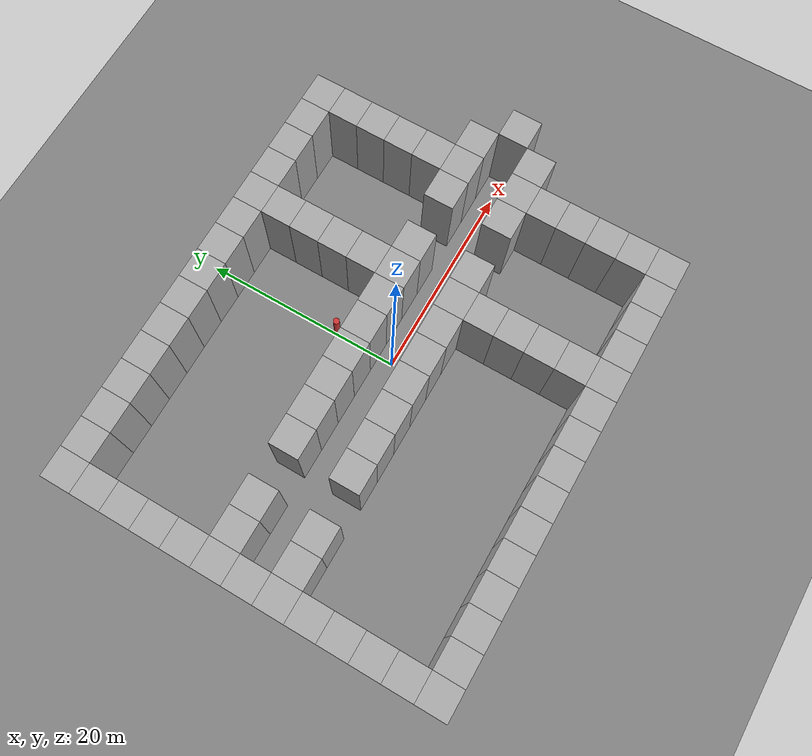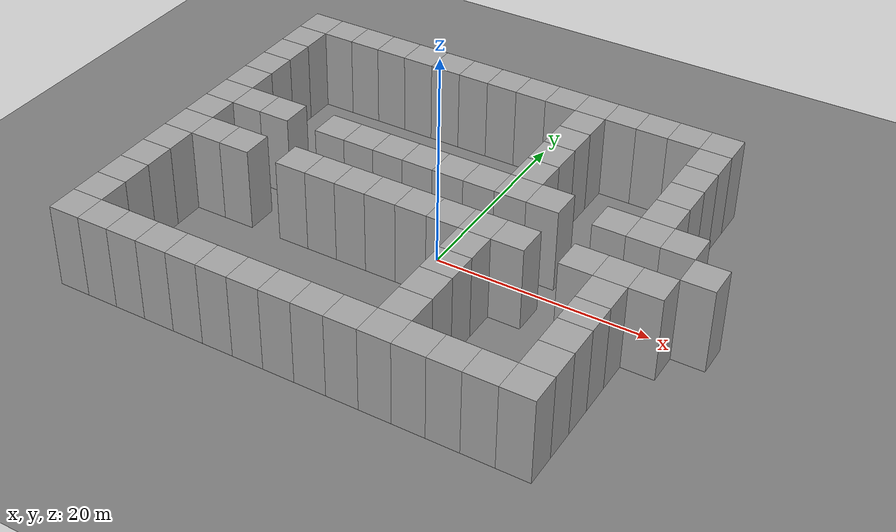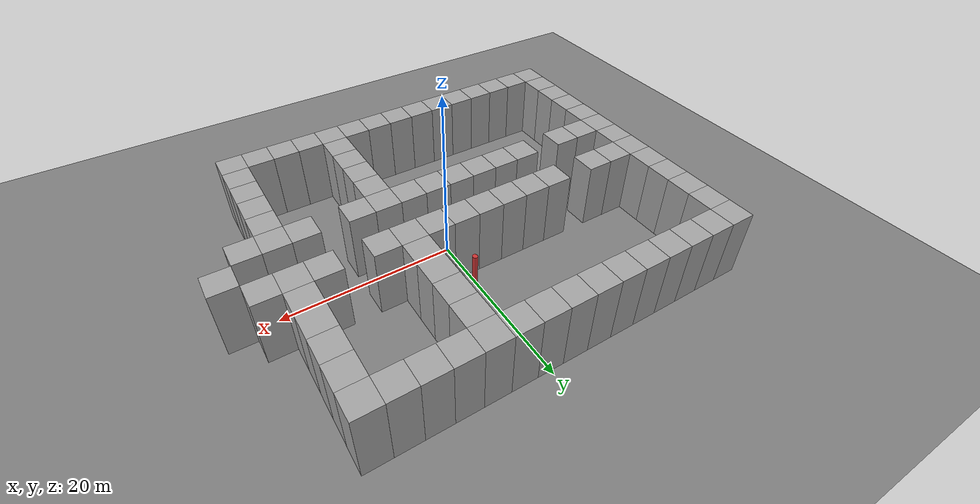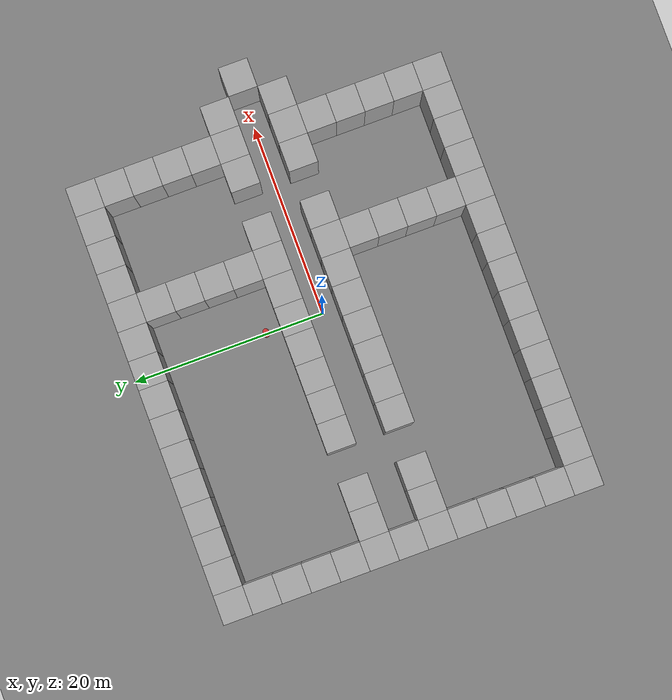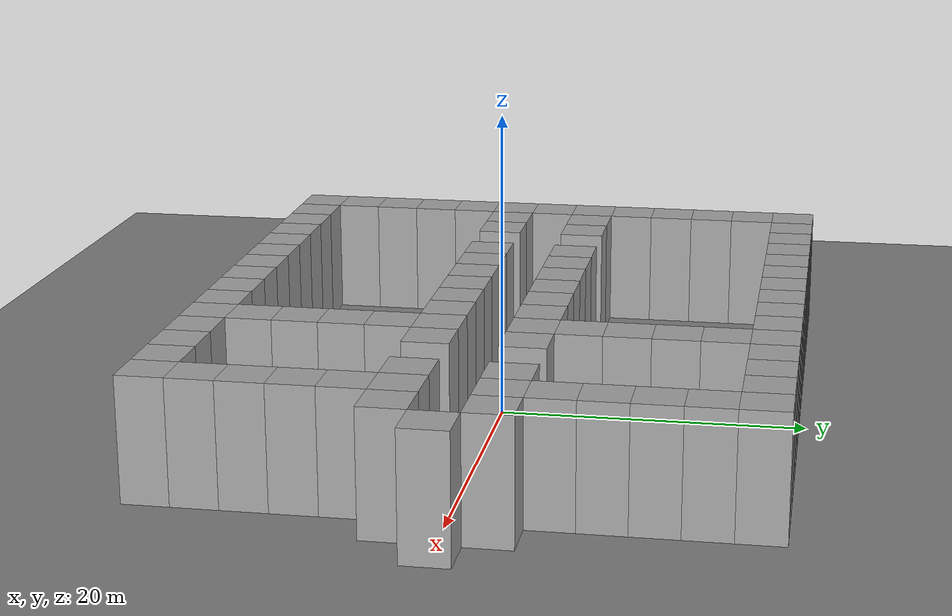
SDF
<?xml version="1.0" ?>
<sdf version="1.9">
  <world name="maze">

    <plugin filename="gz-sim-physics-system"
            name="gz::sim::systems::Physics"/>
    <plugin filename="gz-sim-sensors-system"
            name="gz::sim::systems::Sensors">
      <render_engine>ogre2</render_engine>
    </plugin>
    <plugin filename="gz-sim-imu-system"
            name="gz::sim::systems::Imu"/>
    <plugin filename="gz-sim-navsat-system"
            name="gz::sim::systems::NavSat"/>
    <plugin filename="gz-sim-contact-system"
            name="gz::sim::systems::Contact"/>
    <plugin filename="gz-sim-scene-broadcaster-system"
            name="gz::sim::systems::SceneBroadcaster"/>
    <plugin filename="gz-sim-user-commands-system"
            name="gz::sim::systems::UserCommands"/>

    <light name="sun" type="directional">
      <cast_shadows>true</cast_shadows>
      <pose>0 0 10 0 0 0</pose>
      <diffuse>1 1 1 1</diffuse>
      <specular>0.5 0.5 0.5 1</specular>
      <attenuation>
        <range>1000</range>
        <constant>0.9</constant>
        <linear>0.01</linear>
        <quadratic>0.001</quadratic>
      </attenuation>
      <direction>-0.5 0.1 -0.9</direction>
    </light>

    <model name="ground_plane">
      <static>true</static>
      <link name="link">
        <collision name="collision">
          <geometry>
            <plane><normal>0 0 1</normal><size>200 200</size></plane>
          </geometry>
        </collision>
        <visual name="visual">
          <geometry>
            <plane><normal>0 0 1</normal><size>200 200</size></plane>
          </geometry>
          <material>
            <ambient>0.3 0.3 0.3 1</ambient>
            <diffuse>0.5 0.5 0.5 1</diffuse>
          </material>
        </visual>
      </link>
    </model>

    <model name="wall_0">
      <static>true</static>
      <pose>-24.000 18.000 4.000 0 0 0</pose>
      <link name="link">
        <collision name="collision">
          <geometry>
            <box><size>3.000 3.000 8.000</size></box>
          </geometry>
        </collision>
        <visual name="visual">
          <geometry>
            <box><size>3.000 3.000 8.000</size></box>
          </geometry>
          <material>
            <ambient>0.45 0.45 0.45 1</ambient>
            <diffuse>0.65 0.65 0.65 1</diffuse>
          </material>
        </visual>
      </link>
    </model>
    <model name="wall_1">
      <static>true</static>
      <pose>-21.000 18.000 4.000 0 0 0</pose>
      <link name="link">
        <collision name="collision">
          <geometry>
            <box><size>3.000 3.000 8.000</size></box>
          </geometry>
        </collision>
        <visual name="visual">
          <geometry>
            <box><size>3.000 3.000 8.000</size></box>
          </geometry>
          <material>
            <ambient>0.45 0.45 0.45 1</ambient>
            <diffuse>0.65 0.65 0.65 1</diffuse>
          </material>
        </visual>
      </link>
    </model>
    <model name="wall_2">
      <static>true</static>
      <pose>-18.000 18.000 4.000 0 0 0</pose>
      <link name="link">
        <collision name="collision">
          <geometry>
            <box><size>3.000 3.000 8.000</size></box>
          </geometry>
        </collision>
        <visual name="visual">
          <geometry>
            <box><size>3.000 3.000 8.000</size></box>
          </geometry>
          <material>
            <ambient>0.45 0.45 0.45 1</ambient>
            <diffuse>0.65 0.65 0.65 1</diffuse>
          </material>
        </visual>
      </link>
    </model>
    <model name="wall_3">
      <static>true</static>
      <pose>-15.000 18.000 4.000 0 0 0</pose>
      <link name="link">
        <collision name="collision">
          <geometry>
            <box><size>3.000 3.000 8.000</size></box>
          </geometry>
        </collision>
        <visual name="visual">
          <geometry>
            <box><size>3.000 3.000 8.000</size></box>
          </geometry>
          <material>
            <ambient>0.45 0.45 0.45 1</ambient>
            <diffuse>0.65 0.65 0.65 1</diffuse>
          </material>
        </visual>
      </link>
    </model>
    <model name="wall_4">
      <static>true</static>
      <pose>-12.000 18.000 4.000 0 0 0</pose>
      <link name="link">
        <collision name="collision">
          <geometry>
            <box><size>3.000 3.000 8.000</size></box>
          </geometry>
        </collision>
        <visual name="visual">
          <geometry>
            <box><size>3.000 3.000 8.000</size></box>
          </geometry>
          <material>
            <ambient>0.45 0.45 0.45 1</ambient>
            <diffuse>0.65 0.65 0.65 1</diffuse>
          </material>
        </visual>
      </link>
    </model>
    <model name="wall_5">
      <static>true</static>
      <pose>-9.000 18.000 4.000 0 0 0</pose>
      <link name="link">
        <collision name="collision">
          <geometry>
            <box><size>3.000 3.000 8.000</size></box>
          </geometry>
        </collision>
        <visual name="visual">
          <geometry>
            <box><size>3.000 3.000 8.000</size></box>
          </geometry>
          <material>
            <ambient>0.45 0.45 0.45 1</ambient>
            <diffuse>0.65 0.65 0.65 1</diffuse>
          </material>
        </visual>
      </link>
    </model>
    <model name="wall_6">
      <static>true</static>
      <pose>-6.000 18.000 4.000 0 0 0</pose>
      <link name="link">
        <collision name="collision">
          <geometry>
            <box><size>3.000 3.000 8.000</size></box>
          </geometry>
        </collision>
        <visual name="visual">
          <geometry>
            <box><size>3.000 3.000 8.000</size></box>
          </geometry>
          <material>
            <ambient>0.45 0.45 0.45 1</ambient>
            <diffuse>0.65 0.65 0.65 1</diffuse>
          </material>
        </visual>
      </link>
    </model>
    <model name="wall_7">
      <static>true</static>
      <pose>-3.000 18.000 4.000 0 0 0</pose>
      <link name="link">
        <collision name="collision">
          <geometry>
            <box><size>3.000 3.000 8.000</size></box>
          </geometry>
        </collision>
        <visual name="visual">
          <geometry>
            <box><size>3.000 3.000 8.000</size></box>
          </geometry>
          <material>
            <ambient>0.45 0.45 0.45 1</ambient>
            <diffuse>0.65 0.65 0.65 1</diffuse>
          </material>
        </visual>
      </link>
    </model>
    <model name="wall_8">
      <static>true</static>
      <pose>0.000 18.000 4.000 0 0 0</pose>
      <link name="link">
        <collision name="collision">
          <geometry>
            <box><size>3.000 3.000 8.000</size></box>
          </geometry>
        </collision>
        <visual name="visual">
          <geometry>
            <box><size>3.000 3.000 8.000</size></box>
          </geometry>
          <material>
            <ambient>0.45 0.45 0.45 1</ambient>
            <diffuse>0.65 0.65 0.65 1</diffuse>
          </material>
        </visual>
      </link>
    </model>
    <model name="wall_9">
      <static>true</static>
      <pose>3.000 18.000 4.000 0 0 0</pose>
      <link name="link">
        <collision name="collision">
          <geometry>
            <box><size>3.000 3.000 8.000</size></box>
          </geometry>
        </collision>
        <visual name="visual">
          <geometry>
            <box><size>3.000 3.000 8.000</size></box>
          </geometry>
          <material>
            <ambient>0.45 0.45 0.45 1</ambient>
            <diffuse>0.65 0.65 0.65 1</diffuse>
          </material>
        </visual>
      </link>
    </model>
    <model name="wall_10">
      <static>true</static>
      <pose>6.000 18.000 4.000 0 0 0</pose>
      <link name="link">
        <collision name="collision">
          <geometry>
            <box><size>3.000 3.000 8.000</size></box>
          </geometry>
        </collision>
        <visual name="visual">
          <geometry>
            <box><size>3.000 3.000 8.000</size></box>
          </geometry>
          <material>
            <ambient>0.45 0.45 0.45 1</ambient>
            <diffuse>0.65 0.65 0.65 1</diffuse>
          </material>
        </visual>
      </link>
    </model>
    <model name="wall_11">
      <static>true</static>
      <pose>9.000 18.000 4.000 0 0 0</pose>
      <link name="link">
        <collision name="collision">
          <geometry>
            <box><size>3.000 3.000 8.000</size></box>
          </geometry>
        </collision>
        <visual name="visual">
          <geometry>
            <box><size>3.000 3.000 8.000</size></box>
          </geometry>
          <material>
            <ambient>0.45 0.45 0.45 1</ambient>
            <diffuse>0.65 0.65 0.65 1</diffuse>
          </material>
        </visual>
      </link>
    </model>
    <model name="wall_12">
      <static>true</static>
      <pose>12.000 18.000 4.000 0 0 0</pose>
      <link name="link">
        <collision name="collision">
          <geometry>
            <box><size>3.000 3.000 8.000</size></box>
          </geometry>
        </collision>
        <visual name="visual">
          <geometry>
            <box><size>3.000 3.000 8.000</size></box>
          </geometry>
          <material>
            <ambient>0.45 0.45 0.45 1</ambient>
            <diffuse>0.65 0.65 0.65 1</diffuse>
          </material>
        </visual>
      </link>
    </model>
    <model name="wall_13">
      <static>true</static>
      <pose>15.000 18.000 4.000 0 0 0</pose>
      <link name="link">
        <collision name="collision">
          <geometry>
            <box><size>3.000 3.000 8.000</size></box>
          </geometry>
        </collision>
        <visual name="visual">
          <geometry>
            <box><size>3.000 3.000 8.000</size></box>
          </geometry>
          <material>
            <ambient>0.45 0.45 0.45 1</ambient>
            <diffuse>0.65 0.65 0.65 1</diffuse>
          </material>
        </visual>
      </link>
    </model>
    <model name="wall_14">
      <static>true</static>
      <pose>18.000 18.000 4.000 0 0 0</pose>
      <link name="link">
        <collision name="collision">
          <geometry>
            <box><size>3.000 3.000 8.000</size></box>
          </geometry>
        </collision>
        <visual name="visual">
          <geometry>
            <box><size>3.000 3.000 8.000</size></box>
          </geometry>
          <material>
            <ambient>0.45 0.45 0.45 1</ambient>
            <diffuse>0.65 0.65 0.65 1</diffuse>
          </material>
        </visual>
      </link>
    </model>
    <model name="wall_15">
      <static>true</static>
      <pose>-24.000 15.000 4.000 0 0 0</pose>
      <link name="link">
        <collision name="collision">
          <geometry>
            <box><size>3.000 3.000 8.000</size></box>
          </geometry>
        </collision>
        <visual name="visual">
          <geometry>
            <box><size>3.000 3.000 8.000</size></box>
          </geometry>
          <material>
            <ambient>0.45 0.45 0.45 1</ambient>
            <diffuse>0.65 0.65 0.65 1</diffuse>
          </material>
        </visual>
      </link>
    </model>
    <model name="wall_16">
      <static>true</static>
      <pose>6.000 15.000 4.000 0 0 0</pose>
      <link name="link">
        <collision name="collision">
          <geometry>
            <box><size>3.000 3.000 8.000</size></box>
          </geometry>
        </collision>
        <visual name="visual">
          <geometry>
            <box><size>3.000 3.000 8.000</size></box>
          </geometry>
          <material>
            <ambient>0.45 0.45 0.45 1</ambient>
            <diffuse>0.65 0.65 0.65 1</diffuse>
          </material>
        </visual>
      </link>
    </model>
    <model name="wall_17">
      <static>true</static>
      <pose>18.000 15.000 4.000 0 0 0</pose>
      <link name="link">
        <collision name="collision">
          <geometry>
            <box><size>3.000 3.000 8.000</size></box>
          </geometry>
        </collision>
        <visual name="visual">
          <geometry>
            <box><size>3.000 3.000 8.000</size></box>
          </geometry>
          <material>
            <ambient>0.45 0.45 0.45 1</ambient>
            <diffuse>0.65 0.65 0.65 1</diffuse>
          </material>
        </visual>
      </link>
    </model>
    <model name="wall_18">
      <static>true</static>
      <pose>-24.000 12.000 4.000 0 0 0</pose>
      <link name="link">
        <collision name="collision">
          <geometry>
            <box><size>3.000 3.000 8.000</size></box>
          </geometry>
        </collision>
        <visual name="visual">
          <geometry>
            <box><size>3.000 3.000 8.000</size></box>
          </geometry>
          <material>
            <ambient>0.45 0.45 0.45 1</ambient>
            <diffuse>0.65 0.65 0.65 1</diffuse>
          </material>
        </visual>
      </link>
    </model>
    <model name="wall_19">
      <static>true</static>
      <pose>6.000 12.000 4.000 0 0 0</pose>
      <link name="link">
        <collision name="collision">
          <geometry>
            <box><size>3.000 3.000 8.000</size></box>
          </geometry>
        </collision>
        <visual name="visual">
          <geometry>
            <box><size>3.000 3.000 8.000</size></box>
          </geometry>
          <material>
            <ambient>0.45 0.45 0.45 1</ambient>
            <diffuse>0.65 0.65 0.65 1</diffuse>
          </material>
        </visual>
      </link>
    </model>
    <model name="wall_20">
      <static>true</static>
      <pose>18.000 12.000 4.000 0 0 0</pose>
      <link name="link">
        <collision name="collision">
          <geometry>
            <box><size>3.000 3.000 8.000</size></box>
          </geometry>
        </collision>
        <visual name="visual">
          <geometry>
            <box><size>3.000 3.000 8.000</size></box>
          </geometry>
          <material>
            <ambient>0.45 0.45 0.45 1</ambient>
            <diffuse>0.65 0.65 0.65 1</diffuse>
          </material>
        </visual>
      </link>
    </model>
    <model name="wall_21">
      <static>true</static>
      <pose>-24.000 9.000 4.000 0 0 0</pose>
      <link name="link">
        <collision name="collision">
          <geometry>
            <box><size>3.000 3.000 8.000</size></box>
          </geometry>
        </collision>
        <visual name="visual">
          <geometry>
            <box><size>3.000 3.000 8.000</size></box>
          </geometry>
          <material>
            <ambient>0.45 0.45 0.45 1</ambient>
            <diffuse>0.65 0.65 0.65 1</diffuse>
          </material>
        </visual>
      </link>
    </model>
    <model name="wall_22">
      <static>true</static>
      <pose>6.000 9.000 4.000 0 0 0</pose>
      <link name="link">
        <collision name="collision">
          <geometry>
            <box><size>3.000 3.000 8.000</size></box>
          </geometry>
        </collision>
        <visual name="visual">
          <geometry>
            <box><size>3.000 3.000 8.000</size></box>
          </geometry>
          <material>
            <ambient>0.45 0.45 0.45 1</ambient>
            <diffuse>0.65 0.65 0.65 1</diffuse>
          </material>
        </visual>
      </link>
    </model>
    <model name="wall_23">
      <static>true</static>
      <pose>18.000 9.000 4.000 0 0 0</pose>
      <link name="link">
        <collision name="collision">
          <geometry>
            <box><size>3.000 3.000 8.000</size></box>
          </geometry>
        </collision>
        <visual name="visual">
          <geometry>
            <box><size>3.000 3.000 8.000</size></box>
          </geometry>
          <material>
            <ambient>0.45 0.45 0.45 1</ambient>
            <diffuse>0.65 0.65 0.65 1</diffuse>
          </material>
        </visual>
      </link>
    </model>
    <model name="wall_24">
      <static>true</static>
      <pose>-24.000 6.000 4.000 0 0 0</pose>
      <link name="link">
        <collision name="collision">
          <geometry>
            <box><size>3.000 3.000 8.000</size></box>
          </geometry>
        </collision>
        <visual name="visual">
          <geometry>
            <box><size>3.000 3.000 8.000</size></box>
          </geometry>
          <material>
            <ambient>0.45 0.45 0.45 1</ambient>
            <diffuse>0.65 0.65 0.65 1</diffuse>
          </material>
        </visual>
      </link>
    </model>
    <model name="wall_25">
      <static>true</static>
      <pose>6.000 6.000 4.000 0 0 0</pose>
      <link name="link">
        <collision name="collision">
          <geometry>
            <box><size>3.000 3.000 8.000</size></box>
          </geometry>
        </collision>
        <visual name="visual">
          <geometry>
            <box><size>3.000 3.000 8.000</size></box>
          </geometry>
          <material>
            <ambient>0.45 0.45 0.45 1</ambient>
            <diffuse>0.65 0.65 0.65 1</diffuse>
          </material>
        </visual>
      </link>
    </model>
    <model name="wall_26">
      <static>true</static>
      <pose>18.000 6.000 4.000 0 0 0</pose>
      <link name="link">
        <collision name="collision">
          <geometry>
            <box><size>3.000 3.000 8.000</size></box>
          </geometry>
        </collision>
        <visual name="visual">
          <geometry>
            <box><size>3.000 3.000 8.000</size></box>
          </geometry>
          <material>
            <ambient>0.45 0.45 0.45 1</ambient>
            <diffuse>0.65 0.65 0.65 1</diffuse>
          </material>
        </visual>
      </link>
    </model>
    <model name="wall_27">
      <static>true</static>
      <pose>-24.000 3.000 4.000 0 0 0</pose>
      <link name="link">
        <collision name="collision">
          <geometry>
            <box><size>3.000 3.000 8.000</size></box>
          </geometry>
        </collision>
        <visual name="visual">
          <geometry>
            <box><size>3.000 3.000 8.000</size></box>
          </geometry>
          <material>
            <ambient>0.45 0.45 0.45 1</ambient>
            <diffuse>0.65 0.65 0.65 1</diffuse>
          </material>
        </visual>
      </link>
    </model>
    <model name="wall_28">
      <static>true</static>
      <pose>-21.000 3.000 4.000 0 0 0</pose>
      <link name="link">
        <collision name="collision">
          <geometry>
            <box><size>3.000 3.000 8.000</size></box>
          </geometry>
        </collision>
        <visual name="visual">
          <geometry>
            <box><size>3.000 3.000 8.000</size></box>
          </geometry>
          <material>
            <ambient>0.45 0.45 0.45 1</ambient>
            <diffuse>0.65 0.65 0.65 1</diffuse>
          </material>
        </visual>
      </link>
    </model>
    <model name="wall_29">
      <static>true</static>
      <pose>-18.000 3.000 4.000 0 0 0</pose>
      <link name="link">
        <collision name="collision">
          <geometry>
            <box><size>3.000 3.000 8.000</size></box>
          </geometry>
        </collision>
        <visual name="visual">
          <geometry>
            <box><size>3.000 3.000 8.000</size></box>
          </geometry>
          <material>
            <ambient>0.45 0.45 0.45 1</ambient>
            <diffuse>0.65 0.65 0.65 1</diffuse>
          </material>
        </visual>
      </link>
    </model>
    <model name="wall_30">
      <static>true</static>
      <pose>-12.000 3.000 4.000 0 0 0</pose>
      <link name="link">
        <collision name="collision">
          <geometry>
            <box><size>3.000 3.000 8.000</size></box>
          </geometry>
        </collision>
        <visual name="visual">
          <geometry>
            <box><size>3.000 3.000 8.000</size></box>
          </geometry>
          <material>
            <ambient>0.45 0.45 0.45 1</ambient>
            <diffuse>0.65 0.65 0.65 1</diffuse>
          </material>
        </visual>
      </link>
    </model>
    <model name="wall_31">
      <static>true</static>
      <pose>-9.000 3.000 4.000 0 0 0</pose>
      <link name="link">
        <collision name="collision">
          <geometry>
            <box><size>3.000 3.000 8.000</size></box>
          </geometry>
        </collision>
        <visual name="visual">
          <geometry>
            <box><size>3.000 3.000 8.000</size></box>
          </geometry>
          <material>
            <ambient>0.45 0.45 0.45 1</ambient>
            <diffuse>0.65 0.65 0.65 1</diffuse>
          </material>
        </visual>
      </link>
    </model>
    <model name="wall_32">
      <static>true</static>
      <pose>-6.000 3.000 4.000 0 0 0</pose>
      <link name="link">
        <collision name="collision">
          <geometry>
            <box><size>3.000 3.000 8.000</size></box>
          </geometry>
        </collision>
        <visual name="visual">
          <geometry>
            <box><size>3.000 3.000 8.000</size></box>
          </geometry>
          <material>
            <ambient>0.45 0.45 0.45 1</ambient>
            <diffuse>0.65 0.65 0.65 1</diffuse>
          </material>
        </visual>
      </link>
    </model>
    <model name="wall_33">
      <static>true</static>
      <pose>-3.000 3.000 4.000 0 0 0</pose>
      <link name="link">
        <collision name="collision">
          <geometry>
            <box><size>3.000 3.000 8.000</size></box>
          </geometry>
        </collision>
        <visual name="visual">
          <geometry>
            <box><size>3.000 3.000 8.000</size></box>
          </geometry>
          <material>
            <ambient>0.45 0.45 0.45 1</ambient>
            <diffuse>0.65 0.65 0.65 1</diffuse>
          </material>
        </visual>
      </link>
    </model>
    <model name="wall_34">
      <static>true</static>
      <pose>0.000 3.000 4.000 0 0 0</pose>
      <link name="link">
        <collision name="collision">
          <geometry>
            <box><size>3.000 3.000 8.000</size></box>
          </geometry>
        </collision>
        <visual name="visual">
          <geometry>
            <box><size>3.000 3.000 8.000</size></box>
          </geometry>
          <material>
            <ambient>0.45 0.45 0.45 1</ambient>
            <diffuse>0.65 0.65 0.65 1</diffuse>
          </material>
        </visual>
      </link>
    </model>
    <model name="wall_35">
      <static>true</static>
      <pose>3.000 3.000 4.000 0 0 0</pose>
      <link name="link">
        <collision name="collision">
          <geometry>
            <box><size>3.000 3.000 8.000</size></box>
          </geometry>
        </collision>
        <visual name="visual">
          <geometry>
            <box><size>3.000 3.000 8.000</size></box>
          </geometry>
          <material>
            <ambient>0.45 0.45 0.45 1</ambient>
            <diffuse>0.65 0.65 0.65 1</diffuse>
          </material>
        </visual>
      </link>
    </model>
    <model name="wall_36">
      <static>true</static>
      <pose>6.000 3.000 4.000 0 0 0</pose>
      <link name="link">
        <collision name="collision">
          <geometry>
            <box><size>3.000 3.000 8.000</size></box>
          </geometry>
        </collision>
        <visual name="visual">
          <geometry>
            <box><size>3.000 3.000 8.000</size></box>
          </geometry>
          <material>
            <ambient>0.45 0.45 0.45 1</ambient>
            <diffuse>0.65 0.65 0.65 1</diffuse>
          </material>
        </visual>
      </link>
    </model>
    <model name="wall_37">
      <static>true</static>
      <pose>9.000 3.000 4.000 0 0 0</pose>
      <link name="link">
        <collision name="collision">
          <geometry>
            <box><size>3.000 3.000 8.000</size></box>
          </geometry>
        </collision>
        <visual name="visual">
          <geometry>
            <box><size>3.000 3.000 8.000</size></box>
          </geometry>
          <material>
            <ambient>0.45 0.45 0.45 1</ambient>
            <diffuse>0.65 0.65 0.65 1</diffuse>
          </material>
        </visual>
      </link>
    </model>
    <model name="wall_38">
      <static>true</static>
      <pose>15.000 3.000 4.000 0 0 0</pose>
      <link name="link">
        <collision name="collision">
          <geometry>
            <box><size>3.000 3.000 8.000</size></box>
          </geometry>
        </collision>
        <visual name="visual">
          <geometry>
            <box><size>3.000 3.000 8.000</size></box>
          </geometry>
          <material>
            <ambient>0.45 0.45 0.45 1</ambient>
            <diffuse>0.65 0.65 0.65 1</diffuse>
          </material>
        </visual>
      </link>
    </model>
    <model name="wall_39">
      <static>true</static>
      <pose>18.000 3.000 4.000 0 0 0</pose>
      <link name="link">
        <collision name="collision">
          <geometry>
            <box><size>3.000 3.000 8.000</size></box>
          </geometry>
        </collision>
        <visual name="visual">
          <geometry>
            <box><size>3.000 3.000 8.000</size></box>
          </geometry>
          <material>
            <ambient>0.45 0.45 0.45 1</ambient>
            <diffuse>0.65 0.65 0.65 1</diffuse>
          </material>
        </visual>
      </link>
    </model>
    <model name="wall_40">
      <static>true</static>
      <pose>21.000 3.000 4.000 0 0 0</pose>
      <link name="link">
        <collision name="collision">
          <geometry>
            <box><size>3.000 3.000 8.000</size></box>
          </geometry>
        </collision>
        <visual name="visual">
          <geometry>
            <box><size>3.000 3.000 8.000</size></box>
          </geometry>
          <material>
            <ambient>0.45 0.45 0.45 1</ambient>
            <diffuse>0.65 0.65 0.65 1</diffuse>
          </material>
        </visual>
      </link>
    </model>
    <model name="wall_41">
      <static>true</static>
      <pose>-24.000 0.000 4.000 0 0 0</pose>
      <link name="link">
        <collision name="collision">
          <geometry>
            <box><size>3.000 3.000 8.000</size></box>
          </geometry>
        </collision>
        <visual name="visual">
          <geometry>
            <box><size>3.000 3.000 8.000</size></box>
          </geometry>
          <material>
            <ambient>0.45 0.45 0.45 1</ambient>
            <diffuse>0.65 0.65 0.65 1</diffuse>
          </material>
        </visual>
      </link>
    </model>
    <model name="wall_42">
      <static>true</static>
      <pose>24.000 0.000 4.000 0 0 0</pose>
      <link name="link">
        <collision name="collision">
          <geometry>
            <box><size>3.000 3.000 8.000</size></box>
          </geometry>
        </collision>
        <visual name="visual">
          <geometry>
            <box><size>3.000 3.000 8.000</size></box>
          </geometry>
          <material>
            <ambient>0.45 0.45 0.45 1</ambient>
            <diffuse>0.65 0.65 0.65 1</diffuse>
          </material>
        </visual>
      </link>
    </model>
    <model name="wall_43">
      <static>true</static>
      <pose>-24.000 -3.000 4.000 0 0 0</pose>
      <link name="link">
        <collision name="collision">
          <geometry>
            <box><size>3.000 3.000 8.000</size></box>
          </geometry>
        </collision>
        <visual name="visual">
          <geometry>
            <box><size>3.000 3.000 8.000</size></box>
          </geometry>
          <material>
            <ambient>0.45 0.45 0.45 1</ambient>
            <diffuse>0.65 0.65 0.65 1</diffuse>
          </material>
        </visual>
      </link>
    </model>
    <model name="wall_44">
      <static>true</static>
      <pose>-21.000 -3.000 4.000 0 0 0</pose>
      <link name="link">
        <collision name="collision">
          <geometry>
            <box><size>3.000 3.000 8.000</size></box>
          </geometry>
        </collision>
        <visual name="visual">
          <geometry>
            <box><size>3.000 3.000 8.000</size></box>
          </geometry>
          <material>
            <ambient>0.45 0.45 0.45 1</ambient>
            <diffuse>0.65 0.65 0.65 1</diffuse>
          </material>
        </visual>
      </link>
    </model>
    <model name="wall_45">
      <static>true</static>
      <pose>-18.000 -3.000 4.000 0 0 0</pose>
      <link name="link">
        <collision name="collision">
          <geometry>
            <box><size>3.000 3.000 8.000</size></box>
          </geometry>
        </collision>
        <visual name="visual">
          <geometry>
            <box><size>3.000 3.000 8.000</size></box>
          </geometry>
          <material>
            <ambient>0.45 0.45 0.45 1</ambient>
            <diffuse>0.65 0.65 0.65 1</diffuse>
          </material>
        </visual>
      </link>
    </model>
    <model name="wall_46">
      <static>true</static>
      <pose>-12.000 -3.000 4.000 0 0 0</pose>
      <link name="link">
        <collision name="collision">
          <geometry>
            <box><size>3.000 3.000 8.000</size></box>
          </geometry>
        </collision>
        <visual name="visual">
          <geometry>
            <box><size>3.000 3.000 8.000</size></box>
          </geometry>
          <material>
            <ambient>0.45 0.45 0.45 1</ambient>
            <diffuse>0.65 0.65 0.65 1</diffuse>
          </material>
        </visual>
      </link>
    </model>
    <model name="wall_47">
      <static>true</static>
      <pose>-9.000 -3.000 4.000 0 0 0</pose>
      <link name="link">
        <collision name="collision">
          <geometry>
            <box><size>3.000 3.000 8.000</size></box>
          </geometry>
        </collision>
        <visual name="visual">
          <geometry>
            <box><size>3.000 3.000 8.000</size></box>
          </geometry>
          <material>
            <ambient>0.45 0.45 0.45 1</ambient>
            <diffuse>0.65 0.65 0.65 1</diffuse>
          </material>
        </visual>
      </link>
    </model>
    <model name="wall_48">
      <static>true</static>
      <pose>-6.000 -3.000 4.000 0 0 0</pose>
      <link name="link">
        <collision name="collision">
          <geometry>
            <box><size>3.000 3.000 8.000</size></box>
          </geometry>
        </collision>
        <visual name="visual">
          <geometry>
            <box><size>3.000 3.000 8.000</size></box>
          </geometry>
          <material>
            <ambient>0.45 0.45 0.45 1</ambient>
            <diffuse>0.65 0.65 0.65 1</diffuse>
          </material>
        </visual>
      </link>
    </model>
    <model name="wall_49">
      <static>true</static>
      <pose>-3.000 -3.000 4.000 0 0 0</pose>
      <link name="link">
        <collision name="collision">
          <geometry>
            <box><size>3.000 3.000 8.000</size></box>
          </geometry>
        </collision>
        <visual name="visual">
          <geometry>
            <box><size>3.000 3.000 8.000</size></box>
          </geometry>
          <material>
            <ambient>0.45 0.45 0.45 1</ambient>
            <diffuse>0.65 0.65 0.65 1</diffuse>
          </material>
        </visual>
      </link>
    </model>
    <model name="wall_50">
      <static>true</static>
      <pose>0.000 -3.000 4.000 0 0 0</pose>
      <link name="link">
        <collision name="collision">
          <geometry>
            <box><size>3.000 3.000 8.000</size></box>
          </geometry>
        </collision>
        <visual name="visual">
          <geometry>
            <box><size>3.000 3.000 8.000</size></box>
          </geometry>
          <material>
            <ambient>0.45 0.45 0.45 1</ambient>
            <diffuse>0.65 0.65 0.65 1</diffuse>
          </material>
        </visual>
      </link>
    </model>
    <model name="wall_51">
      <static>true</static>
      <pose>3.000 -3.000 4.000 0 0 0</pose>
      <link name="link">
        <collision name="collision">
          <geometry>
            <box><size>3.000 3.000 8.000</size></box>
          </geometry>
        </collision>
        <visual name="visual">
          <geometry>
            <box><size>3.000 3.000 8.000</size></box>
          </geometry>
          <material>
            <ambient>0.45 0.45 0.45 1</ambient>
            <diffuse>0.65 0.65 0.65 1</diffuse>
          </material>
        </visual>
      </link>
    </model>
    <model name="wall_52">
      <static>true</static>
      <pose>6.000 -3.000 4.000 0 0 0</pose>
      <link name="link">
        <collision name="collision">
          <geometry>
            <box><size>3.000 3.000 8.000</size></box>
          </geometry>
        </collision>
        <visual name="visual">
          <geometry>
            <box><size>3.000 3.000 8.000</size></box>
          </geometry>
          <material>
            <ambient>0.45 0.45 0.45 1</ambient>
            <diffuse>0.65 0.65 0.65 1</diffuse>
          </material>
        </visual>
      </link>
    </model>
    <model name="wall_53">
      <static>true</static>
      <pose>9.000 -3.000 4.000 0 0 0</pose>
      <link name="link">
        <collision name="collision">
          <geometry>
            <box><size>3.000 3.000 8.000</size></box>
          </geometry>
        </collision>
        <visual name="visual">
          <geometry>
            <box><size>3.000 3.000 8.000</size></box>
          </geometry>
          <material>
            <ambient>0.45 0.45 0.45 1</ambient>
            <diffuse>0.65 0.65 0.65 1</diffuse>
          </material>
        </visual>
      </link>
    </model>
    <model name="wall_54">
      <static>true</static>
      <pose>15.000 -3.000 4.000 0 0 0</pose>
      <link name="link">
        <collision name="collision">
          <geometry>
            <box><size>3.000 3.000 8.000</size></box>
          </geometry>
        </collision>
        <visual name="visual">
          <geometry>
            <box><size>3.000 3.000 8.000</size></box>
          </geometry>
          <material>
            <ambient>0.45 0.45 0.45 1</ambient>
            <diffuse>0.65 0.65 0.65 1</diffuse>
          </material>
        </visual>
      </link>
    </model>
    <model name="wall_55">
      <static>true</static>
      <pose>18.000 -3.000 4.000 0 0 0</pose>
      <link name="link">
        <collision name="collision">
          <geometry>
            <box><size>3.000 3.000 8.000</size></box>
          </geometry>
        </collision>
        <visual name="visual">
          <geometry>
            <box><size>3.000 3.000 8.000</size></box>
          </geometry>
          <material>
            <ambient>0.45 0.45 0.45 1</ambient>
            <diffuse>0.65 0.65 0.65 1</diffuse>
          </material>
        </visual>
      </link>
    </model>
    <model name="wall_56">
      <static>true</static>
      <pose>21.000 -3.000 4.000 0 0 0</pose>
      <link name="link">
        <collision name="collision">
          <geometry>
            <box><size>3.000 3.000 8.000</size></box>
          </geometry>
        </collision>
        <visual name="visual">
          <geometry>
            <box><size>3.000 3.000 8.000</size></box>
          </geometry>
          <material>
            <ambient>0.45 0.45 0.45 1</ambient>
            <diffuse>0.65 0.65 0.65 1</diffuse>
          </material>
        </visual>
      </link>
    </model>
    <model name="wall_57">
      <static>true</static>
      <pose>-24.000 -6.000 4.000 0 0 0</pose>
      <link name="link">
        <collision name="collision">
          <geometry>
            <box><size>3.000 3.000 8.000</size></box>
          </geometry>
        </collision>
        <visual name="visual">
          <geometry>
            <box><size>3.000 3.000 8.000</size></box>
          </geometry>
          <material>
            <ambient>0.45 0.45 0.45 1</ambient>
            <diffuse>0.65 0.65 0.65 1</diffuse>
          </material>
        </visual>
      </link>
    </model>
    <model name="wall_58">
      <static>true</static>
      <pose>6.000 -6.000 4.000 0 0 0</pose>
      <link name="link">
        <collision name="collision">
          <geometry>
            <box><size>3.000 3.000 8.000</size></box>
          </geometry>
        </collision>
        <visual name="visual">
          <geometry>
            <box><size>3.000 3.000 8.000</size></box>
          </geometry>
          <material>
            <ambient>0.45 0.45 0.45 1</ambient>
            <diffuse>0.65 0.65 0.65 1</diffuse>
          </material>
        </visual>
      </link>
    </model>
    <model name="wall_59">
      <static>true</static>
      <pose>18.000 -6.000 4.000 0 0 0</pose>
      <link name="link">
        <collision name="collision">
          <geometry>
            <box><size>3.000 3.000 8.000</size></box>
          </geometry>
        </collision>
        <visual name="visual">
          <geometry>
            <box><size>3.000 3.000 8.000</size></box>
          </geometry>
          <material>
            <ambient>0.45 0.45 0.45 1</ambient>
            <diffuse>0.65 0.65 0.65 1</diffuse>
          </material>
        </visual>
      </link>
    </model>
    <model name="wall_60">
      <static>true</static>
      <pose>-24.000 -9.000 4.000 0 0 0</pose>
      <link name="link">
        <collision name="collision">
          <geometry>
            <box><size>3.000 3.000 8.000</size></box>
          </geometry>
        </collision>
        <visual name="visual">
          <geometry>
            <box><size>3.000 3.000 8.000</size></box>
          </geometry>
          <material>
            <ambient>0.45 0.45 0.45 1</ambient>
            <diffuse>0.65 0.65 0.65 1</diffuse>
          </material>
        </visual>
      </link>
    </model>
    <model name="wall_61">
      <static>true</static>
      <pose>6.000 -9.000 4.000 0 0 0</pose>
      <link name="link">
        <collision name="collision">
          <geometry>
            <box><size>3.000 3.000 8.000</size></box>
          </geometry>
        </collision>
        <visual name="visual">
          <geometry>
            <box><size>3.000 3.000 8.000</size></box>
          </geometry>
          <material>
            <ambient>0.45 0.45 0.45 1</ambient>
            <diffuse>0.65 0.65 0.65 1</diffuse>
          </material>
        </visual>
      </link>
    </model>
    <model name="wall_62">
      <static>true</static>
      <pose>18.000 -9.000 4.000 0 0 0</pose>
      <link name="link">
        <collision name="collision">
          <geometry>
            <box><size>3.000 3.000 8.000</size></box>
          </geometry>
        </collision>
        <visual name="visual">
          <geometry>
            <box><size>3.000 3.000 8.000</size></box>
          </geometry>
          <material>
            <ambient>0.45 0.45 0.45 1</ambient>
            <diffuse>0.65 0.65 0.65 1</diffuse>
          </material>
        </visual>
      </link>
    </model>
    <model name="wall_63">
      <static>true</static>
      <pose>-24.000 -12.000 4.000 0 0 0</pose>
      <link name="link">
        <collision name="collision">
          <geometry>
            <box><size>3.000 3.000 8.000</size></box>
          </geometry>
        </collision>
        <visual name="visual">
          <geometry>
            <box><size>3.000 3.000 8.000</size></box>
          </geometry>
          <material>
            <ambient>0.45 0.45 0.45 1</ambient>
            <diffuse>0.65 0.65 0.65 1</diffuse>
          </material>
        </visual>
      </link>
    </model>
    <model name="wall_64">
      <static>true</static>
      <pose>6.000 -12.000 4.000 0 0 0</pose>
      <link name="link">
        <collision name="collision">
          <geometry>
            <box><size>3.000 3.000 8.000</size></box>
          </geometry>
        </collision>
        <visual name="visual">
          <geometry>
            <box><size>3.000 3.000 8.000</size></box>
          </geometry>
          <material>
            <ambient>0.45 0.45 0.45 1</ambient>
            <diffuse>0.65 0.65 0.65 1</diffuse>
          </material>
        </visual>
      </link>
    </model>
    <model name="wall_65">
      <static>true</static>
      <pose>18.000 -12.000 4.000 0 0 0</pose>
      <link name="link">
        <collision name="collision">
          <geometry>
            <box><size>3.000 3.000 8.000</size></box>
          </geometry>
        </collision>
        <visual name="visual">
          <geometry>
            <box><size>3.000 3.000 8.000</size></box>
          </geometry>
          <material>
            <ambient>0.45 0.45 0.45 1</ambient>
            <diffuse>0.65 0.65 0.65 1</diffuse>
          </material>
        </visual>
      </link>
    </model>
    <model name="wall_66">
      <static>true</static>
      <pose>-24.000 -15.000 4.000 0 0 0</pose>
      <link name="link">
        <collision name="collision">
          <geometry>
            <box><size>3.000 3.000 8.000</size></box>
          </geometry>
        </collision>
        <visual name="visual">
          <geometry>
            <box><size>3.000 3.000 8.000</size></box>
          </geometry>
          <material>
            <ambient>0.45 0.45 0.45 1</ambient>
            <diffuse>0.65 0.65 0.65 1</diffuse>
          </material>
        </visual>
      </link>
    </model>
    <model name="wall_67">
      <static>true</static>
      <pose>6.000 -15.000 4.000 0 0 0</pose>
      <link name="link">
        <collision name="collision">
          <geometry>
            <box><size>3.000 3.000 8.000</size></box>
          </geometry>
        </collision>
        <visual name="visual">
          <geometry>
            <box><size>3.000 3.000 8.000</size></box>
          </geometry>
          <material>
            <ambient>0.45 0.45 0.45 1</ambient>
            <diffuse>0.65 0.65 0.65 1</diffuse>
          </material>
        </visual>
      </link>
    </model>
    <model name="wall_68">
      <static>true</static>
      <pose>18.000 -15.000 4.000 0 0 0</pose>
      <link name="link">
        <collision name="collision">
          <geometry>
            <box><size>3.000 3.000 8.000</size></box>
          </geometry>
        </collision>
        <visual name="visual">
          <geometry>
            <box><size>3.000 3.000 8.000</size></box>
          </geometry>
          <material>
            <ambient>0.45 0.45 0.45 1</ambient>
            <diffuse>0.65 0.65 0.65 1</diffuse>
          </material>
        </visual>
      </link>
    </model>
    <model name="wall_69">
      <static>true</static>
      <pose>-24.000 -18.000 4.000 0 0 0</pose>
      <link name="link">
        <collision name="collision">
          <geometry>
            <box><size>3.000 3.000 8.000</size></box>
          </geometry>
        </collision>
        <visual name="visual">
          <geometry>
            <box><size>3.000 3.000 8.000</size></box>
          </geometry>
          <material>
            <ambient>0.45 0.45 0.45 1</ambient>
            <diffuse>0.65 0.65 0.65 1</diffuse>
          </material>
        </visual>
      </link>
    </model>
    <model name="wall_70">
      <static>true</static>
      <pose>-21.000 -18.000 4.000 0 0 0</pose>
      <link name="link">
        <collision name="collision">
          <geometry>
            <box><size>3.000 3.000 8.000</size></box>
          </geometry>
        </collision>
        <visual name="visual">
          <geometry>
            <box><size>3.000 3.000 8.000</size></box>
          </geometry>
          <material>
            <ambient>0.45 0.45 0.45 1</ambient>
            <diffuse>0.65 0.65 0.65 1</diffuse>
          </material>
        </visual>
      </link>
    </model>
    <model name="wall_71">
      <static>true</static>
      <pose>-18.000 -18.000 4.000 0 0 0</pose>
      <link name="link">
        <collision name="collision">
          <geometry>
            <box><size>3.000 3.000 8.000</size></box>
          </geometry>
        </collision>
        <visual name="visual">
          <geometry>
            <box><size>3.000 3.000 8.000</size></box>
          </geometry>
          <material>
            <ambient>0.45 0.45 0.45 1</ambient>
            <diffuse>0.65 0.65 0.65 1</diffuse>
          </material>
        </visual>
      </link>
    </model>
    <model name="wall_72">
      <static>true</static>
      <pose>-15.000 -18.000 4.000 0 0 0</pose>
      <link name="link">
        <collision name="collision">
          <geometry>
            <box><size>3.000 3.000 8.000</size></box>
          </geometry>
        </collision>
        <visual name="visual">
          <geometry>
            <box><size>3.000 3.000 8.000</size></box>
          </geometry>
          <material>
            <ambient>0.45 0.45 0.45 1</ambient>
            <diffuse>0.65 0.65 0.65 1</diffuse>
          </material>
        </visual>
      </link>
    </model>
    <model name="wall_73">
      <static>true</static>
      <pose>-12.000 -18.000 4.000 0 0 0</pose>
      <link name="link">
        <collision name="collision">
          <geometry>
            <box><size>3.000 3.000 8.000</size></box>
          </geometry>
        </collision>
        <visual name="visual">
          <geometry>
            <box><size>3.000 3.000 8.000</size></box>
          </geometry>
          <material>
            <ambient>0.45 0.45 0.45 1</ambient>
            <diffuse>0.65 0.65 0.65 1</diffuse>
          </material>
        </visual>
      </link>
    </model>
    <model name="wall_74">
      <static>true</static>
      <pose>-9.000 -18.000 4.000 0 0 0</pose>
      <link name="link">
        <collision name="collision">
          <geometry>
            <box><size>3.000 3.000 8.000</size></box>
          </geometry>
        </collision>
        <visual name="visual">
          <geometry>
            <box><size>3.000 3.000 8.000</size></box>
          </geometry>
          <material>
            <ambient>0.45 0.45 0.45 1</ambient>
            <diffuse>0.65 0.65 0.65 1</diffuse>
          </material>
        </visual>
      </link>
    </model>
    <model name="wall_75">
      <static>true</static>
      <pose>-6.000 -18.000 4.000 0 0 0</pose>
      <link name="link">
        <collision name="collision">
          <geometry>
            <box><size>3.000 3.000 8.000</size></box>
          </geometry>
        </collision>
        <visual name="visual">
          <geometry>
            <box><size>3.000 3.000 8.000</size></box>
          </geometry>
          <material>
            <ambient>0.45 0.45 0.45 1</ambient>
            <diffuse>0.65 0.65 0.65 1</diffuse>
          </material>
        </visual>
      </link>
    </model>
    <model name="wall_76">
      <static>true</static>
      <pose>-3.000 -18.000 4.000 0 0 0</pose>
      <link name="link">
        <collision name="collision">
          <geometry>
            <box><size>3.000 3.000 8.000</size></box>
          </geometry>
        </collision>
        <visual name="visual">
          <geometry>
            <box><size>3.000 3.000 8.000</size></box>
          </geometry>
          <material>
            <ambient>0.45 0.45 0.45 1</ambient>
            <diffuse>0.65 0.65 0.65 1</diffuse>
          </material>
        </visual>
      </link>
    </model>
    <model name="wall_77">
      <static>true</static>
      <pose>0.000 -18.000 4.000 0 0 0</pose>
      <link name="link">
        <collision name="collision">
          <geometry>
            <box><size>3.000 3.000 8.000</size></box>
          </geometry>
        </collision>
        <visual name="visual">
          <geometry>
            <box><size>3.000 3.000 8.000</size></box>
          </geometry>
          <material>
            <ambient>0.45 0.45 0.45 1</ambient>
            <diffuse>0.65 0.65 0.65 1</diffuse>
          </material>
        </visual>
      </link>
    </model>
    <model name="wall_78">
      <static>true</static>
      <pose>3.000 -18.000 4.000 0 0 0</pose>
      <link name="link">
        <collision name="collision">
          <geometry>
            <box><size>3.000 3.000 8.000</size></box>
          </geometry>
        </collision>
        <visual name="visual">
          <geometry>
            <box><size>3.000 3.000 8.000</size></box>
          </geometry>
          <material>
            <ambient>0.45 0.45 0.45 1</ambient>
            <diffuse>0.65 0.65 0.65 1</diffuse>
          </material>
        </visual>
      </link>
    </model>
    <model name="wall_79">
      <static>true</static>
      <pose>6.000 -18.000 4.000 0 0 0</pose>
      <link name="link">
        <collision name="collision">
          <geometry>
            <box><size>3.000 3.000 8.000</size></box>
          </geometry>
        </collision>
        <visual name="visual">
          <geometry>
            <box><size>3.000 3.000 8.000</size></box>
          </geometry>
          <material>
            <ambient>0.45 0.45 0.45 1</ambient>
            <diffuse>0.65 0.65 0.65 1</diffuse>
          </material>
        </visual>
      </link>
    </model>
    <model name="wall_80">
      <static>true</static>
      <pose>9.000 -18.000 4.000 0 0 0</pose>
      <link name="link">
        <collision name="collision">
          <geometry>
            <box><size>3.000 3.000 8.000</size></box>
          </geometry>
        </collision>
        <visual name="visual">
          <geometry>
            <box><size>3.000 3.000 8.000</size></box>
          </geometry>
          <material>
            <ambient>0.45 0.45 0.45 1</ambient>
            <diffuse>0.65 0.65 0.65 1</diffuse>
          </material>
        </visual>
      </link>
    </model>
    <model name="wall_81">
      <static>true</static>
      <pose>12.000 -18.000 4.000 0 0 0</pose>
      <link name="link">
        <collision name="collision">
          <geometry>
            <box><size>3.000 3.000 8.000</size></box>
          </geometry>
        </collision>
        <visual name="visual">
          <geometry>
            <box><size>3.000 3.000 8.000</size></box>
          </geometry>
          <material>
            <ambient>0.45 0.45 0.45 1</ambient>
            <diffuse>0.65 0.65 0.65 1</diffuse>
          </material>
        </visual>
      </link>
    </model>
    <model name="wall_82">
      <static>true</static>
      <pose>15.000 -18.000 4.000 0 0 0</pose>
      <link name="link">
        <collision name="collision">
          <geometry>
            <box><size>3.000 3.000 8.000</size></box>
          </geometry>
        </collision>
        <visual name="visual">
          <geometry>
            <box><size>3.000 3.000 8.000</size></box>
          </geometry>
          <material>
            <ambient>0.45 0.45 0.45 1</ambient>
            <diffuse>0.65 0.65 0.65 1</diffuse>
          </material>
        </visual>
      </link>
    </model>
    <model name="wall_83">
      <static>true</static>
      <pose>18.000 -18.000 4.000 0 0 0</pose>
      <link name="link">
        <collision name="collision">
          <geometry>
            <box><size>3.000 3.000 8.000</size></box>
          </geometry>
        </collision>
        <visual name="visual">
          <geometry>
            <box><size>3.000 3.000 8.000</size></box>
          </geometry>
          <material>
            <ambient>0.45 0.45 0.45 1</ambient>
            <diffuse>0.65 0.65 0.65 1</diffuse>
          </material>
        </visual>
      </link>
    </model>

    <model name="cylinder_0">
      <static>true</static>
      <pose>0.000 6.000 2.000 0 0 0</pose>
      <link name="link">
        <collision name="collision">
          <geometry>
            <cylinder>
              <radius>0.300</radius>
              <length>4.000</length>
            </cylinder>
          </geometry>
        </collision>
        <visual name="visual">
          <geometry>
            <cylinder>
              <radius>0.300</radius>
              <length>4.000</length>
            </cylinder>
          </geometry>
          <material>
            <ambient>0.8 0.2 0.2 1</ambient>
            <diffuse>0.8 0.2 0.2 1</diffuse>
          </material>
        </visual>
      </link>
    </model>

  </world>
</sdf>
